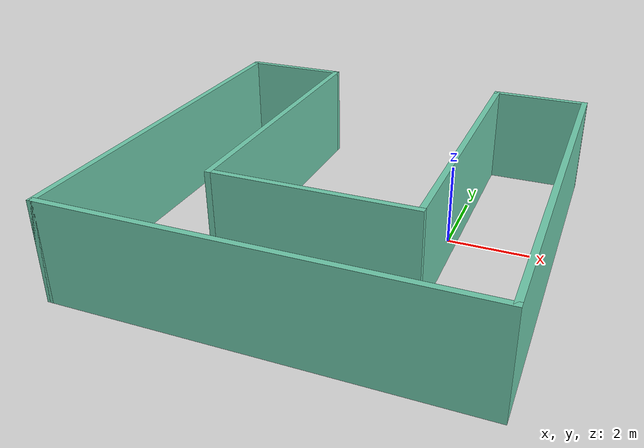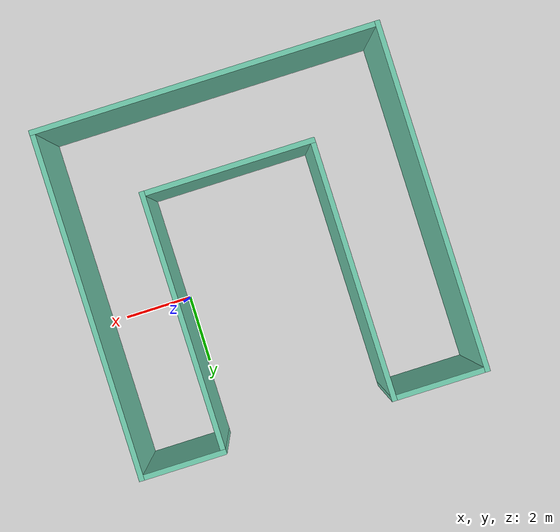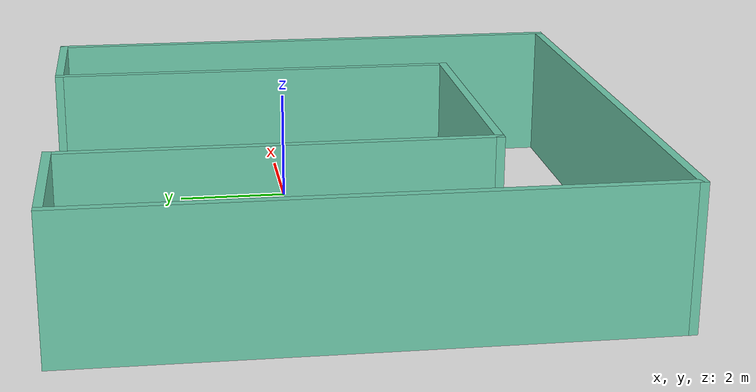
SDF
<?xml version='1.0'?>
<sdf version='1.6'>
  <model name='test'>
    <pose frame=''>-2.437 -0.72 0 0 -0 0</pose>
    <link name='Wall_0'>
      <collision name='Wall_0_Collision'>
        <geometry>
          <box>
            <size>10 0.15 2.5</size>
          </box>
        </geometry>
        <pose frame=''>0 0 1.25 0 -0 0</pose>
      </collision>
      <visual name='Wall_0_Visual'>
        <pose frame=''>0 0 1.25 0 -0 0</pose>
        <geometry>
          <box>
            <size>10 0.15 2.5</size>
          </box>
        </geometry>
        <material>
          <script>
            <uri>file://media/materials/scripts/gazebo.material</uri>
            <name>Gazebo/Grey</name>
          </script>
          <ambient>0.435294 0.796078 0.67451 1</ambient>
        </material>
      </visual>
      <pose frame=''>-4.925 0 0 0 -0 1.5708</pose>
    </link>
    <link name='Wall_3'>
      <collision name='Wall_3_Collision'>
        <geometry>
          <box>
            <size>10 0.15 2.5</size>
          </box>
        </geometry>
        <pose frame=''>0 0 1.25 0 -0 0</pose>
      </collision>
      <visual name='Wall_3_Visual'>
        <pose frame=''>0 0 1.25 0 -0 0</pose>
        <geometry>
          <box>
            <size>10 0.15 2.5</size>
          </box>
        </geometry>
        <material>
          <script>
            <uri>file://media/materials/scripts/gazebo.material</uri>
            <name>Gazebo/Grey</name>
          </script>
          <ambient>0.435294 0.796078 0.67451 1</ambient>
        </material>
      </visual>
      <pose frame=''>0 -4.925 0 0 -0 0</pose>
    </link>
    <link name='Wall_4'>
      <collision name='Wall_4_Collision'>
        <geometry>
          <box>
            <size>10 0.15 2.5</size>
          </box>
        </geometry>
        <pose frame=''>0 0 1.25 0 -0 0</pose>
      </collision>
      <visual name='Wall_4_Visual'>
        <pose frame=''>0 0 1.25 0 -0 0</pose>
        <geometry>
          <box>
            <size>10 0.15 2.5</size>
          </box>
        </geometry>
        <material>
          <script>
            <uri>file://media/materials/scripts/gazebo.material</uri>
            <name>Gazebo/Grey</name>
          </script>
          <ambient>0.435294 0.796078 0.67451 1</ambient>
        </material>
      </visual>
      <pose frame=''>4.925 0 0 0 -0 1.5708</pose>
    </link>
    <link name='Wall_5'>
      <collision name='Wall_5_Collision'>
        <geometry>
          <box>
            <size>2.5 0.15 2.5</size>
          </box>
        </geometry>
        <pose frame=''>0 0 1.25 0 -0 0</pose>
      </collision>
      <visual name='Wall_5_Visual'>
        <pose frame=''>0 0 1.25 0 -0 0</pose>
        <geometry>
          <box>
            <size>2.5 0.15 2.5</size>
          </box>
        </geometry>
        <material>
          <script>
            <uri>file://media/materials/scripts/gazebo.material</uri>
            <name>Gazebo/Grey</name>
          </script>
          <ambient>0.435294 0.796078 0.67451 1</ambient>
        </material>
      </visual>
      <pose frame=''>3.75 4.925 0 0 -0 3.14159</pose>
    </link>
    <link name='Wall_6'>
      <collision name='Wall_6_Collision'>
        <geometry>
          <box>
            <size>7.5 0.15 2.5</size>
          </box>
        </geometry>
        <pose frame=''>0 0 1.25 0 -0 0</pose>
      </collision>
      <visual name='Wall_6_Visual'>
        <pose frame=''>0 0 1.25 0 -0 0</pose>
        <geometry>
          <box>
            <size>7.5 0.15 2.5</size>
          </box>
        </geometry>
        <material>
          <script>
            <uri>file://media/materials/scripts/gazebo.material</uri>
            <name>Gazebo/Grey</name>
          </script>
          <ambient>0.435294 0.796078 0.67451 1</ambient>
        </material>
      </visual>
      <pose frame=''>2.575 1.25 0 0 0 -1.5708</pose>
    </link>
    <link name='Wall_7'>
      <collision name='Wall_7_Collision'>
        <geometry>
          <box>
            <size>5 0.15 2.5</size>
          </box>
        </geometry>
        <pose frame=''>0 0 1.25 0 -0 0</pose>
      </collision>
      <visual name='Wall_7_Visual'>
        <pose frame=''>0 0 1.25 0 -0 0</pose>
        <geometry>
          <box>
            <size>5 0.15 2.5</size>
          </box>
        </geometry>
        <material>
          <script>
            <uri>file://media/materials/scripts/gazebo.material</uri>
            <name>Gazebo/Grey</name>
          </script>
          <ambient>0.435294 0.796078 0.67451 1</ambient>
        </material>
      </visual>
      <pose frame=''>0.15 -2.425 0 0 -0 3.14159</pose>
    </link>
    <link name='Wall_8'>
      <collision name='Wall_8_Collision'>
        <geometry>
          <box>
            <size>7.5 0.15 2.5</size>
          </box>
        </geometry>
        <pose frame=''>0 0 1.25 0 -0 0</pose>
      </collision>
      <visual name='Wall_8_Visual'>
        <pose frame=''>0 0 1.25 0 -0 0</pose>
        <geometry>
          <box>
            <size>7.5 0.15 2.5</size>
          </box>
        </geometry>
        <material>
          <script>
            <uri>file://media/materials/scripts/gazebo.material</uri>
            <name>Gazebo/Grey</name>
          </script>
          <ambient>0.435294 0.796078 0.67451 1</ambient>
        </material>
      </visual>
      <pose frame=''>-2.275 1.25 0 0 -0 1.5708</pose>
    </link>
    <link name='Wall_9'>
      <collision name='Wall_9_Collision'>
        <geometry>
          <box>
            <size>2.8 0.15 2.5</size>
          </box>
        </geometry>
        <pose frame=''>0 0 1.25 0 -0 0</pose>
      </collision>
      <visual name='Wall_9_Visual'>
        <pose frame=''>0 0 1.25 0 -0 0</pose>
        <geometry>
          <box>
            <size>2.8 0.15 2.5</size>
          </box>
        </geometry>
        <material>
          <script>
            <uri>file://media/materials/scripts/gazebo.material</uri>
            <name>Gazebo/Grey</name>
          </script>
          <ambient>0.435294 0.796078 0.67451 1</ambient>
        </material>
      </visual>
      <pose frame=''>-3.6 4.925 0 0 -0 3.14159</pose>
    </link>
    <static>1</static>
  </model>
</sdf>
